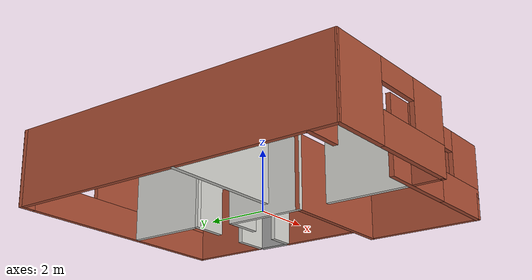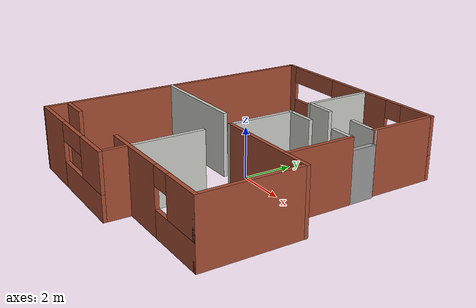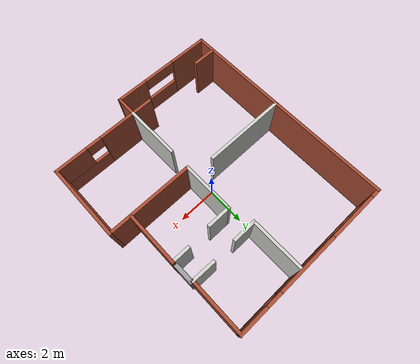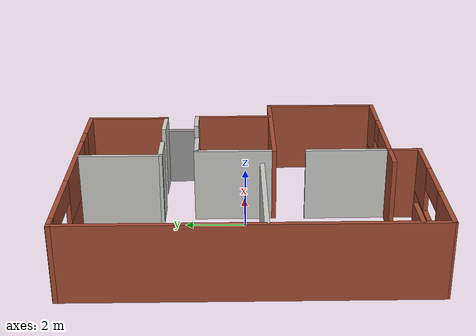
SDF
<?xml version='1.0'?>
<sdf version='1.6'>
  <model name='home_2room'>
    <pose frame=''>0.064458 -0.139758 0 0 -0 0</pose>
    <link name='Door_1'>
      <collision name='Door_1_Collision'>
        <geometry>
          <box>
            <size>1.072 0.2 2</size>
          </box>
        </geometry>
        <pose frame=''>0 0 1 0 -0 0</pose>
      </collision>
      <visual name='Door_1_Visual'>
        <pose frame=''>0 0 1 0 -0 0</pose>
        <geometry>
          <box>
            <size>1.072 0.2 2</size>
          </box>
        </geometry>
        <material>
          <script>
            <uri>file://media/materials/scripts/gazebo.material</uri>
            <name>Gazebo/Grey</name>
          </script>
        </material>
      </visual>
      <pose frame=''>3.6512 2.40933 0 0 -0 1.58219</pose>
    </link>
    <link name='Wall_10'>
      <collision name='Wall_10_Collision'>
        <geometry>
          <box>
            <size>1.25 0.15 2.5</size>
          </box>
        </geometry>
        <pose frame=''>0 0 1.25 0 -0 0</pose>
      </collision>
      <visual name='Wall_10_Visual'>
        <pose frame=''>0 0 1.25 0 -0 0</pose>
        <geometry>
          <box>
            <size>1.25 0.15 2.5</size>
          </box>
        </geometry>
        <material>
          <script>
            <uri>file://media/materials/scripts/gazebo.material</uri>
            <name>Gazebo/CeilingTiled</name>
          </script>
          <ambient>0.921569 0.807843 0.615686 1</ambient>
        </material>
        <meta>
          <layer>0</layer>
        </meta>
      </visual>
      <pose frame=''>3.04378 2.96062 0 0 -0 -0.020906</pose>
    </link>
    <link name='Wall_11'>
      <collision name='Wall_11_Collision'>
        <geometry>
          <box>
            <size>2.75 0.15 2.5</size>
          </box>
        </geometry>
        <pose frame=''>0 0 1.25 0 -0 0</pose>
      </collision>
      <visual name='Wall_11_Visual'>
        <pose frame=''>0 0 1.25 0 -0 0</pose>
        <geometry>
          <box>
            <size>2.75 0.15 2.5</size>
          </box>
        </geometry>
        <material>
          <script>
            <uri>file://media/materials/scripts/gazebo.material</uri>
            <name>Gazebo/Bricks</name>
          </script>
          <ambient>0.760784 0.662745 0.627451 1</ambient>
        </material>
        <meta>
          <layer>0</layer>
        </meta>
      </visual>
      <pose frame=''>3.59378 4.26062 0 0 -0 1.5708</pose>
    </link>
    <link name='Wall_13'>
      <collision name='Wall_13_Collision'>
        <geometry>
          <box>
            <size>2.75 0.15 2.5</size>
          </box>
        </geometry>
        <pose frame=''>0 0 1.25 0 -0 0</pose>
      </collision>
      <visual name='Wall_13_Visual'>
        <pose frame=''>0 0 1.25 0 -0 0</pose>
        <geometry>
          <box>
            <size>2.75 0.15 2.5</size>
          </box>
        </geometry>
        <material>
          <script>
            <uri>file://media/materials/scripts/gazebo.material</uri>
            <name>Gazebo/CeilingTiled</name>
          </script>
          <ambient>0.921569 0.807843 0.615686 1</ambient>
        </material>
        <meta>
          <layer>0</layer>
        </meta>
      </visual>
      <pose frame=''>0.11341 4.23769 0 0 -0 1.5709</pose>
    </link>
    <link name='Wall_16'>
      <collision name='Wall_16_Collision'>
        <geometry>
          <box>
            <size>11.5 0.15 2.5</size>
          </box>
        </geometry>
        <pose frame=''>0 0 1.25 0 -0 0</pose>
      </collision>
      <visual name='Wall_16_Visual'>
        <pose frame=''>0 0 1.25 0 -0 0</pose>
        <geometry>
          <box>
            <size>11.5 0.15 2.5</size>
          </box>
        </geometry>
        <material>
          <script>
            <uri>file://media/materials/scripts/gazebo.material</uri>
            <name>Gazebo/Bricks</name>
          </script>
          <ambient>1 1 1 1</ambient>
        </material>
        <meta>
          <layer>0</layer>
        </meta>
      </visual>
      <pose frame=''>-4.81746 0.017758 0 0 -0 -1.5708</pose>
    </link>
    <link name='Wall_17'>
      <pose frame=''>-2.17764 -5.67483 0 0 -0 -0.006663</pose>
      <visual name='Wall_17_Visual_0'>
        <pose frame=''>-1.6758 0 1.25 0 -0 0</pose>
        <geometry>
          <box>
            <size>2.07805 0.15 2.5</size>
          </box>
        </geometry>
        <material>
          <script>
            <uri>file://media/materials/scripts/gazebo.material</uri>
            <name>Gazebo/Bricks</name>
          </script>
          <ambient>1 1 1 1</ambient>
        </material>
        <meta>
          <layer>0</layer>
        </meta>
      </visual>
      <collision name='Wall_17_Collision_0'>
        <geometry>
          <box>
            <size>2.07805 0.15 2.5</size>
          </box>
        </geometry>
        <pose frame=''>-1.6758 0 1.25 0 -0 0</pose>
      </collision>
      <visual name='Wall_17_Visual_1'>
        <pose frame=''>1.03902 0 0.5 0 -0 0</pose>
        <geometry>
          <box>
            <size>3.3516 0.15 1</size>
          </box>
        </geometry>
        <material>
          <script>
            <uri>file://media/materials/scripts/gazebo.material</uri>
            <name>Gazebo/Bricks</name>
          </script>
          <ambient>1 1 1 1</ambient>
        </material>
        <meta>
          <layer>0</layer>
        </meta>
      </visual>
      <collision name='Wall_17_Collision_1'>
        <geometry>
          <box>
            <size>3.3516 0.15 1</size>
          </box>
        </geometry>
        <pose frame=''>1.03902 0 0.5 0 -0 0</pose>
      </collision>
      <visual name='Wall_17_Visual_2'>
        <pose frame=''>1.88852 0 1.75 0 -0 0</pose>
        <geometry>
          <box>
            <size>1.6526 0.15 1.5</size>
          </box>
        </geometry>
        <material>
          <script>
            <uri>file://media/materials/scripts/gazebo.material</uri>
            <name>Gazebo/Bricks</name>
          </script>
          <ambient>1 1 1 1</ambient>
        </material>
        <meta>
          <layer>0</layer>
        </meta>
      </visual>
      <collision name='Wall_17_Collision_2'>
        <geometry>
          <box>
            <size>1.6526 0.15 1.5</size>
          </box>
        </geometry>
        <pose frame=''>1.88852 0 1.75 0 -0 0</pose>
      </collision>
      <visual name='Wall_17_Visual_3'>
        <pose frame=''>0.212727 0 2.15 0 -0 0</pose>
        <geometry>
          <box>
            <size>1.699 0.15 0.7</size>
          </box>
        </geometry>
        <material>
          <script>
            <uri>file://media/materials/scripts/gazebo.material</uri>
            <name>Gazebo/Bricks</name>
          </script>
          <ambient>1 1 1 1</ambient>
        </material>
        <meta>
          <layer>0</layer>
        </meta>
      </visual>
      <collision name='Wall_17_Collision_3'>
        <geometry>
          <box>
            <size>1.699 0.15 0.7</size>
          </box>
        </geometry>
        <pose frame=''>0.212727 0 2.15 0 -0 0</pose>
      </collision>
    </link>
    <link name='Wall_19'>
      <collision name='Wall_19_Collision'>
        <geometry>
          <box>
            <size>1.14569 0.15 2.5</size>
          </box>
        </geometry>
        <pose frame=''>0 0 1.25 0 -0 0</pose>
      </collision>
      <visual name='Wall_19_Visual'>
        <pose frame=''>0 0 1.25 0 -0 0</pose>
        <geometry>
          <box>
            <size>1.14569 0.15 2.5</size>
          </box>
        </geometry>
        <material>
          <script>
            <uri>file://media/materials/scripts/gazebo.material</uri>
            <name>Gazebo/Bricks</name>
          </script>
          <ambient>1 1 1 1</ambient>
        </material>
        <meta>
          <layer>0</layer>
        </meta>
      </visual>
      <pose frame=''>0.468991 -5.15941 0 0 -0 1.55713</pose>
    </link>
    <link name='Wall_2'>
      <pose frame=''>-0.609958 5.68376 0 0 -0 -0.002139</pose>
      <visual name='Wall_2_Visual_0'>
        <pose frame=''>-4.02689 0 1.25 0 -0 0</pose>
        <geometry>
          <box>
            <size>0.511486 0.15 2.5</size>
          </box>
        </geometry>
        <material>
          <script>
            <uri>file://media/materials/scripts/gazebo.material</uri>
            <name>Gazebo/Bricks</name>
          </script>
          <ambient>0.760784 0.662745 0.627451 1</ambient>
        </material>
        <meta>
          <layer>0</layer>
        </meta>
      </visual>
      <collision name='Wall_2_Collision_0'>
        <geometry>
          <box>
            <size>0.511486 0.15 2.5</size>
          </box>
        </geometry>
        <pose frame=''>-4.02689 0 1.25 0 -0 0</pose>
      </collision>
      <visual name='Wall_2_Visual_1'>
        <pose frame=''>0.255743 0 0.5 0 -0 0</pose>
        <geometry>
          <box>
            <size>8.05377 0.15 1</size>
          </box>
        </geometry>
        <material>
          <script>
            <uri>file://media/materials/scripts/gazebo.material</uri>
            <name>Gazebo/Bricks</name>
          </script>
          <ambient>0.760784 0.662745 0.627451 1</ambient>
        </material>
        <meta>
          <layer>0</layer>
        </meta>
      </visual>
      <collision name='Wall_2_Collision_1'>
        <geometry>
          <box>
            <size>8.05377 0.15 1</size>
          </box>
        </geometry>
        <pose frame=''>0.255743 0 0.5 0 -0 0</pose>
      </collision>
      <visual name='Wall_2_Visual_2'>
        <pose frame=''>0.366404 0 1.75 0 -0 0</pose>
        <geometry>
          <box>
            <size>3.20169 0.15 1.5</size>
          </box>
        </geometry>
        <material>
          <script>
            <uri>file://media/materials/scripts/gazebo.material</uri>
            <name>Gazebo/Bricks</name>
          </script>
          <ambient>0.760784 0.662745 0.627451 1</ambient>
        </material>
        <meta>
          <layer>0</layer>
        </meta>
      </visual>
      <collision name='Wall_2_Collision_2'>
        <geometry>
          <box>
            <size>3.20169 0.15 1.5</size>
          </box>
        </geometry>
        <pose frame=''>0.366404 0 1.75 0 -0 0</pose>
      </collision>
      <visual name='Wall_2_Visual_3'>
        <pose frame=''>3.52494 0 1.75 0 -0 0</pose>
        <geometry>
          <box>
            <size>1.51538 0.15 1.5</size>
          </box>
        </geometry>
        <material>
          <script>
            <uri>file://media/materials/scripts/gazebo.material</uri>
            <name>Gazebo/Bricks</name>
          </script>
          <ambient>0.760784 0.662745 0.627451 1</ambient>
        </material>
        <meta>
          <layer>0</layer>
        </meta>
      </visual>
      <collision name='Wall_2_Collision_3'>
        <geometry>
          <box>
            <size>1.51538 0.15 1.5</size>
          </box>
        </geometry>
        <pose frame=''>3.52494 0 1.75 0 -0 0</pose>
      </collision>
      <visual name='Wall_2_Visual_4'>
        <pose frame=''>2.36725 0 1 0 -0 0</pose>
        <geometry>
          <box>
            <size>0.8 0.15 0</size>
          </box>
        </geometry>
        <material>
          <script>
            <uri>file://media/materials/scripts/gazebo.material</uri>
            <name>Gazebo/Bricks</name>
          </script>
          <ambient>0.760784 0.662745 0.627451 1</ambient>
        </material>
        <meta>
          <layer>0</layer>
        </meta>
      </visual>
      <collision name='Wall_2_Collision_4'>
        <geometry>
          <box>
            <size>0.8 0.15 0</size>
          </box>
        </geometry>
        <pose frame=''>2.36725 0 1 0 -0 0</pose>
      </collision>
      <visual name='Wall_2_Visual_5'>
        <pose frame=''>-2.50279 0 2.15 0 -0 0</pose>
        <geometry>
          <box>
            <size>2.5367 0.15 0.7</size>
          </box>
        </geometry>
        <material>
          <script>
            <uri>file://media/materials/scripts/gazebo.material</uri>
            <name>Gazebo/Bricks</name>
          </script>
          <ambient>0.760784 0.662745 0.627451 1</ambient>
        </material>
        <meta>
          <layer>0</layer>
        </meta>
      </visual>
      <collision name='Wall_2_Collision_5'>
        <geometry>
          <box>
            <size>2.5367 0.15 0.7</size>
          </box>
        </geometry>
        <pose frame=''>-2.50279 0 2.15 0 -0 0</pose>
      </collision>
      <visual name='Wall_2_Visual_6'>
        <pose frame=''>2.36725 0 2.15 0 -0 0</pose>
        <geometry>
          <box>
            <size>0.8 0.15 0.7</size>
          </box>
        </geometry>
        <material>
          <script>
            <uri>file://media/materials/scripts/gazebo.material</uri>
            <name>Gazebo/Bricks</name>
          </script>
          <ambient>0.760784 0.662745 0.627451 1</ambient>
        </material>
        <meta>
          <layer>0</layer>
        </meta>
      </visual>
      <collision name='Wall_2_Collision_6'>
        <geometry>
          <box>
            <size>0.8 0.15 0.7</size>
          </box>
        </geometry>
        <pose frame=''>2.36725 0 2.15 0 -0 0</pose>
      </collision>
    </link>
    <link name='Wall_22'>
      <collision name='Wall_22_Collision'>
        <geometry>
          <box>
            <size>1.25 0.15 2.5</size>
          </box>
        </geometry>
        <pose frame=''>0 0 1.25 0 -0 0</pose>
      </collision>
      <visual name='Wall_22_Visual'>
        <pose frame=''>0 0 1.25 0 -0 0</pose>
        <geometry>
          <box>
            <size>1.25 0.15 2.5</size>
          </box>
        </geometry>
        <material>
          <script>
            <uri>file://media/materials/scripts/gazebo.material</uri>
            <name>Gazebo/Bricks</name>
          </script>
          <ambient>1 1 1 1</ambient>
        </material>
        <meta>
          <layer>0</layer>
        </meta>
      </visual>
      <pose frame=''>-4.215 -4.77828 0 0 -0 0</pose>
    </link>
    <link name='Wall_24'>
      <pose frame=''>2.1429 -4.68576 0 0 -0 0</pose>
      <visual name='Wall_24_Visual_0'>
        <pose frame=''>-1.25768 0 1.25 0 -0 0</pose>
        <geometry>
          <box>
            <size>2.98464 0.15 2.5</size>
          </box>
        </geometry>
        <material>
          <script>
            <uri>file://media/materials/scripts/gazebo.material</uri>
            <name>Gazebo/Bricks</name>
          </script>
          <ambient>1 1 1 1</ambient>
        </material>
        <meta>
          <layer>0</layer>
        </meta>
      </visual>
      <collision name='Wall_24_Collision_0'>
        <geometry>
          <box>
            <size>2.98464 0.15 2.5</size>
          </box>
        </geometry>
        <pose frame=''>-1.25768 0 1.25 0 -0 0</pose>
      </collision>
      <visual name='Wall_24_Visual_1'>
        <pose frame=''>1.49232 0 0.5 0 -0 0</pose>
        <geometry>
          <box>
            <size>2.51536 0.15 1</size>
          </box>
        </geometry>
        <material>
          <script>
            <uri>file://media/materials/scripts/gazebo.material</uri>
            <name>Gazebo/Bricks</name>
          </script>
          <ambient>1 1 1 1</ambient>
        </material>
        <meta>
          <layer>0</layer>
        </meta>
      </visual>
      <collision name='Wall_24_Collision_1'>
        <geometry>
          <box>
            <size>2.51536 0.15 1</size>
          </box>
        </geometry>
        <pose frame=''>1.49232 0 0.5 0 -0 0</pose>
      </collision>
      <visual name='Wall_24_Visual_2'>
        <pose frame=''>1.89232 0 1.75 0 -0 0</pose>
        <geometry>
          <box>
            <size>1.71535 0.15 1.5</size>
          </box>
        </geometry>
        <material>
          <script>
            <uri>file://media/materials/scripts/gazebo.material</uri>
            <name>Gazebo/Bricks</name>
          </script>
          <ambient>1 1 1 1</ambient>
        </material>
        <meta>
          <layer>0</layer>
        </meta>
      </visual>
      <collision name='Wall_24_Collision_2'>
        <geometry>
          <box>
            <size>1.71535 0.15 1.5</size>
          </box>
        </geometry>
        <pose frame=''>1.89232 0 1.75 0 -0 0</pose>
      </collision>
      <visual name='Wall_24_Visual_3'>
        <pose frame=''>0.634645 0 2.15 0 -0 0</pose>
        <geometry>
          <box>
            <size>0.8 0.15 0.7</size>
          </box>
        </geometry>
        <material>
          <script>
            <uri>file://media/materials/scripts/gazebo.material</uri>
            <name>Gazebo/Bricks</name>
          </script>
          <ambient>1 1 1 1</ambient>
        </material>
        <meta>
          <layer>0</layer>
        </meta>
      </visual>
      <collision name='Wall_24_Collision_3'>
        <geometry>
          <box>
            <size>0.8 0.15 0.7</size>
          </box>
        </geometry>
        <pose frame=''>0.634645 0 2.15 0 -0 0</pose>
      </collision>
    </link>
    <link name='Wall_25'>
      <collision name='Wall_25_Collision'>
        <geometry>
          <box>
            <size>4 0.15 2.5</size>
          </box>
        </geometry>
        <pose frame=''>0 0 1.25 0 -0 0</pose>
      </collision>
      <visual name='Wall_25_Visual'>
        <pose frame=''>0 0 1.25 0 -0 0</pose>
        <geometry>
          <box>
            <size>4 0.15 2.5</size>
          </box>
        </geometry>
        <material>
          <script>
            <uri>file://media/materials/scripts/gazebo.material</uri>
            <name>Gazebo/Bricks</name>
          </script>
          <ambient>0.760784 0.662745 0.627451 1</ambient>
        </material>
        <meta>
          <layer>0</layer>
        </meta>
      </visual>
      <pose frame=''>4.8179 -2.76076 0 0 -0 1.5708</pose>
    </link>
    <link name='Wall_26'>
      <collision name='Wall_26_Collision'>
        <geometry>
          <box>
            <size>4.5 0.15 2.5</size>
          </box>
        </geometry>
        <pose frame=''>0 0 1.25 0 -0 0</pose>
      </collision>
      <visual name='Wall_26_Visual'>
        <pose frame=''>0 0 1.25 0 -0 0</pose>
        <geometry>
          <box>
            <size>4.5 0.15 2.5</size>
          </box>
        </geometry>
        <material>
          <script>
            <uri>file://media/materials/scripts/gazebo.material</uri>
            <name>Gazebo/Bricks</name>
          </script>
          <ambient>1 1 1 1</ambient>
        </material>
        <meta>
          <layer>0</layer>
        </meta>
      </visual>
      <pose frame=''>2.6429 -0.835759 0 0 -0 3.14159</pose>
    </link>
    <link name='Wall_27'>
      <collision name='Wall_27_Collision'>
        <geometry>
          <box>
            <size>2.75 0.15 2.5</size>
          </box>
        </geometry>
        <pose frame=''>0 0 1.25 0 -0 0</pose>
      </collision>
      <visual name='Wall_27_Visual'>
        <pose frame=''>0 0 1.25 0 -0 0</pose>
        <geometry>
          <box>
            <size>2.75 0.15 2.5</size>
          </box>
        </geometry>
        <material>
          <script>
            <uri>file://media/materials/scripts/gazebo.material</uri>
            <name>Gazebo/CeilingTiled</name>
          </script>
          <ambient>0.921569 0.807843 0.615686 1</ambient>
        </material>
        <meta>
          <layer>0</layer>
        </meta>
      </visual>
      <pose frame=''>0.467897 0.464241 0 0 -0 1.5708</pose>
    </link>
    <link name='Wall_28'>
      <collision name='Wall_28_Collision'>
        <geometry>
          <box>
            <size>1.25 0.15 2.5</size>
          </box>
        </geometry>
        <pose frame=''>0 0 1.25 0 -0 0</pose>
      </collision>
      <visual name='Wall_28_Visual'>
        <pose frame=''>0 0 1.25 0 -0 0</pose>
        <geometry>
          <box>
            <size>1.25 0.15 2.5</size>
          </box>
        </geometry>
        <material>
          <script>
            <uri>file://media/materials/scripts/gazebo.material</uri>
            <name>Gazebo/CeilingTiled</name>
          </script>
          <ambient>0.921569 0.807843 0.615686 1</ambient>
        </material>
        <meta>
          <layer>0</layer>
        </meta>
      </visual>
      <pose frame=''>1.0179 1.76424 0 0 -0 0</pose>
    </link>
    <link name='Wall_30'>
      <collision name='Wall_30_Collision'>
        <geometry>
          <box>
            <size>1 0.15 2.5</size>
          </box>
        </geometry>
        <pose frame=''>0 0 1.25 0 -0 0</pose>
      </collision>
      <visual name='Wall_30_Visual'>
        <pose frame=''>0 0 1.25 0 -0 0</pose>
        <geometry>
          <box>
            <size>1 0.15 2.5</size>
          </box>
        </geometry>
        <material>
          <script>
            <uri>file://media/materials/scripts/gazebo.material</uri>
            <name>Gazebo/CeilingTiled</name>
          </script>
          <ambient>0.921569 0.807843 0.615686 1</ambient>
        </material>
        <meta>
          <layer>0</layer>
        </meta>
      </visual>
      <pose frame=''>3.26997 1.83707 0 0 -0 0</pose>
    </link>
    <link name='Wall_32'>
      <collision name='Wall_32_Collision'>
        <geometry>
          <box>
            <size>2.75 0.15 2.5</size>
          </box>
        </geometry>
        <pose frame=''>0 0 1.25 0 -0 0</pose>
      </collision>
      <visual name='Wall_32_Visual'>
        <pose frame=''>0 0 1.25 0 -0 0</pose>
        <geometry>
          <box>
            <size>2.75 0.15 2.5</size>
          </box>
        </geometry>
        <material>
          <script>
            <uri>file://media/materials/scripts/gazebo.material</uri>
            <name>Gazebo/Bricks</name>
          </script>
          <ambient>0.760784 0.662745 0.627451 1</ambient>
        </material>
        <meta>
          <layer>0</layer>
        </meta>
      </visual>
      <pose frame=''>3.69497 0.537072 0 0 -0 -1.5708</pose>
    </link>
    <link name='Wall_34'>
      <collision name='Wall_34_Collision'>
        <geometry>
          <box>
            <size>4.25 0.15 2.5</size>
          </box>
        </geometry>
        <pose frame=''>0 0 1.25 0 -0 0</pose>
      </collision>
      <visual name='Wall_34_Visual'>
        <pose frame=''>0 0 1.25 0 -0 0</pose>
        <geometry>
          <box>
            <size>4.25 0.15 2.5</size>
          </box>
        </geometry>
        <material>
          <script>
            <uri>file://media/materials/scripts/gazebo.material</uri>
            <name>Gazebo/CeilingTiled</name>
          </script>
          <ambient>0.921569 0.807843 0.615686 1</ambient>
        </material>
        <meta>
          <layer>0</layer>
        </meta>
      </visual>
      <pose frame=''>-2.72987 -0.400967 0 0 -0 0</pose>
    </link>
    <link name='Wall_55'>
      <collision name='Wall_55_Collision'>
        <geometry>
          <box>
            <size>2.85434 0.15 2.5</size>
          </box>
        </geometry>
        <pose frame=''>0 0 1.25 0 -0 0</pose>
      </collision>
      <visual name='Wall_55_Visual'>
        <pose frame=''>0 0 1.25 0 -0 0</pose>
        <geometry>
          <box>
            <size>2.85434 0.15 2.5</size>
          </box>
        </geometry>
        <material>
          <script>
            <uri>file://media/materials/scripts/gazebo.material</uri>
            <name>Gazebo/CeilingTiled</name>
          </script>
          <ambient>0.921569 0.807843 0.615686 1</ambient>
        </material>
        <meta>
          <layer>0</layer>
        </meta>
      </visual>
      <pose frame=''>0.468991 -3.30941 0 0 -0 1.57583</pose>
    </link>
    <link name='Wall_8'>
      <collision name='Wall_8_Collision'>
        <geometry>
          <box>
            <size>1.25 0.15 2.5</size>
          </box>
        </geometry>
        <pose frame=''>0 0 1.25 0 -0 0</pose>
      </collision>
      <visual name='Wall_8_Visual'>
        <pose frame=''>0 0 1.25 0 -0 0</pose>
        <geometry>
          <box>
            <size>1.25 0.15 2.5</size>
          </box>
        </geometry>
        <material>
          <script>
            <uri>file://media/materials/scripts/gazebo.material</uri>
            <name>Gazebo/CeilingTiled</name>
          </script>
          <ambient>0.921569 0.807843 0.615686 1</ambient>
        </material>
        <meta>
          <layer>0</layer>
        </meta>
      </visual>
      <pose frame=''>0.663542 2.93776 0 0 -0 0</pose>
    </link>
    <static>1</static>
  </model>
</sdf>
